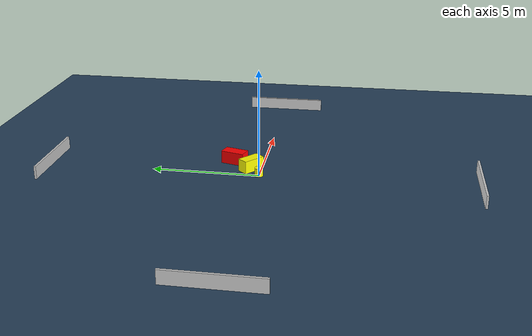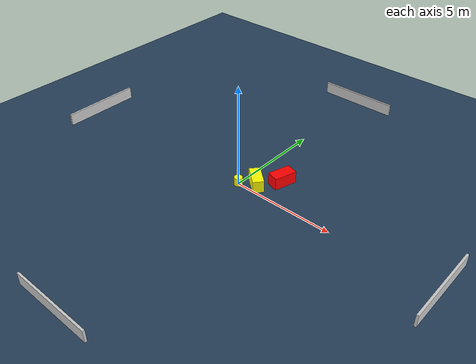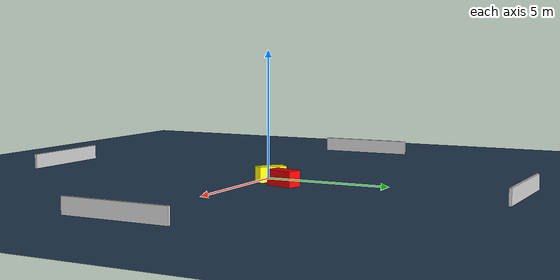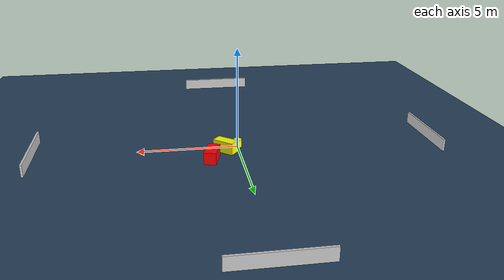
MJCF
<?xml version="1.0" ?>
<mujoco model="generated_environment">
  <option timestep="0.01" integrator="RK4" cone="elliptic"/>
  <default>
    <geom density="1"/>
  </default>
  <asset>
    <texture builtin="gradient" height="3072" name="skybox" rgb1="0.3 0.5 0.7" rgb2="0 0 0" type="skybox" width="512"/>
    <texture builtin="checker" height="300" name="groundplane" rgb1="0.2 0.3 0.4" rgb2="0.1 0.2 0.3" type="2d" width="300"/>
    <material name="groundplane" reflectance="0.2" texrepeat="5 5" texture="groundplane"/>
  </asset>
  <worldbody>
    <light dir="0 0 -1" directional="true" pos="0 0 1.5"/>
    <geom condim="3" friction="0.5 0.005 0.001" material="groundplane" name="floor" pos="0 0 0" size="0 0 0.05" type="plane"/>
    <body name="walls">
      <geom name="wall_1" condim="4" pos="-10.0 0.0 0.3" rgba="0.800000011920929 0.800000011920929 0.800000011920929 1.0" size="0.05 2.0 0.3" type="box"/>
      <geom name="wall_2" condim="4" pos="10.0 0.0 0.3" rgba="0.800000011920929 0.800000011920929 0.800000011920929 1.0" size="0.05 2.0 0.3" type="box"/>
      <geom name="wall_3" condim="4" pos="0.0 -10.0 0.3" rgba="0.800000011920929 0.800000011920929 0.800000011920929 1.0" size="2.0 0.05 0.3" type="box"/>
      <geom name="wall_4" condim="4" pos="0.0 10.0 0.3" rgba="0.800000011920929 0.800000011920929 0.800000011920929 1.0" size="2.0 0.05 0.3" type="box"/>
    </body>
    <body name="robot">
      <joint name="joint_x" type="slide" pos="0 0 0" axis="1 0 0"/>
      <joint name="joint_y" type="slide" pos="0 0 0" axis="0 1 0"/>
      <geom name="robot" type="cylinder" pos="0.0 0.0 0.2" size="0.2 0.2 0.0" mass="5.0" friction="1.0 0.005 0.0001" condim="4" rgba="1.0 1.0 0.0 1.0"/>
    </body>
    <body name="obstacle_1_movable">
      <geom name="obstacle_1_movable" condim="4" pos="0.6715975675765828 0.47160095159630744 0.3" euler="0 0 319.90581096212736" friction="0.0 0.005 0.001" rgba="1.0 1.0 0.0 1.0" size="0.5427165830614157 0.2638836234297211 0.3" type="box" mass="0.1"/>
      <joint type="free"/>
    </body>
    <body name="obstacle_2_static">
      <geom name="obstacle_2_static" condim="4" pos="1.430008772333189 1.394963050099356 0.3" euler="0 0 163.62999783118204" friction="0.0 0.005 0.001" rgba="1.0 0.0 0.0 1.0" size="0.29559620937801506 0.5605220003717077 0.3" type="box"/>
    </body>
  </worldbody>
  <actuator>
    <motor name="actuator_x" joint="joint_x" gear="1" ctrlrange="-1 1"/>
    <motor name="actuator_y" joint="joint_y" gear="1" ctrlrange="-1 1"/>
  </actuator>
</mujoco>
